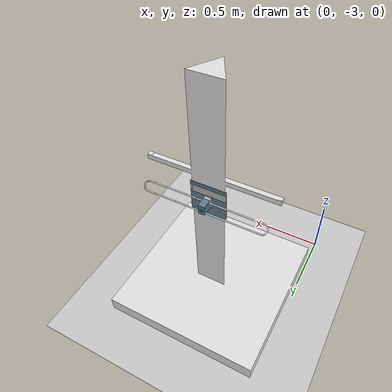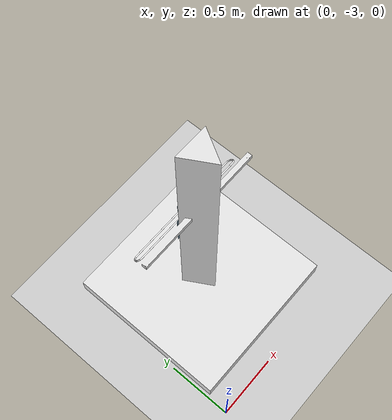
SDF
<sdf version="1.6">
 <world name="default">
  <light name="sun" type="directional">
   <pose>0 0 10 0 -0 0</pose>
   <diffuse>0.8 0.8 0.8 1</diffuse>
   <specular>0.1 0.1 0.1 1</specular>
   <attenuation>
    <range>1000</range>
    <constant>0.9</constant>
    <linear>0.01</linear>
    <quadratic>0.001</quadratic>
   </attenuation>
   <direction>-0.5 0.5 -1</direction>
  </light>
  <model name="ground_plane">
   <static>1</static>
   <link name="link">
    <collision name="collision">
     <geometry><plane><normal>0 0 1</normal><size>100 100</size></plane></geometry>
     <surface><friction><ode><mu>100</mu><mu2>50</mu2></ode></friction></surface>
    </collision>
    <visual name="visual">
     <cast_shadows>0</cast_shadows>
     <geometry><plane><normal>0 0 1</normal><size>100 100</size></plane></geometry>
     <material>
      <script><uri>file://media/materials/scripts/gazebo.material</uri><name>Gazebo/Grey</name></script>
     </material>
    </visual>
   </link>
  </model>
  <gravity>0 0 -9.8</gravity>
  <magnetic_field>6e-06 2.3e-05 -4.2e-05</magnetic_field>
  <atmosphere type="adiabatic"/>
  <physics name="default_physics" default="0" type="ode">
   <max_step_size>0.001</max_step_size>
   <real_time_factor>1</real_time_factor>
   <real_time_update_rate>1000</real_time_update_rate>
  </physics>
  <scene><ambient>0.4 0.4 0.4 1</ambient><background>0.7 0.7 0.7 1</background><shadows>1</shadows></scene>
  <spherical_coordinates>
   <surface_model>EARTH_WGS84</surface_model>
   <latitude_deg>0</latitude_deg>
   <longitude_deg>0</longitude_deg>
   <elevation>0</elevation>
   <heading_deg>0</heading_deg>
  </spherical_coordinates>
  <model name="mast_final">
   <link name="base_link">
    <inertial>
     <pose>1.57231 -1.01443 0.525884 0 -0 0</pose>
     <mass>2042.46</mass>
     <inertia><ixx>712.504</ixx><ixy>0</ixy><ixz>0</ixz><iyy>713.514</iyy><iyz>0</iyz><izz>436</izz></inertia>
    </inertial>
    <visual name="base_link_visual">
     <geometry>
      <mesh><scale>1 1 1</scale><uri>/home/panyam/catkin_ws/src/mast_final/meshes/base_link.STL</uri></mesh>
     </geometry>
     <material>
      <ambient>0.9 0.9 0.9 1</ambient>
      <diffuse>0.9 0.9 0.9 1</diffuse>
      <specular>0.9 0.9 0.9 1</specular>
      <emissive>0 0 0 1</emissive>
      <script><name>ModelPreview_1::base_link::base_link_visual_MATERIAL_</name><uri>__default__</uri></script>
      <shader type="vertex"><normal_map>__default__</normal_map></shader>
     </material>
    </visual>
    <visual name="base_link_fixed_joint_lump__text_board_visual_1">
     <pose>1.5723 -0.93868 1.2601 1.5708 -0 0</pose>
     <geometry>
      <mesh><scale>1 1 1</scale><uri>/home/panyam/catkin_ws/src/mast_final/meshes/text_board.STL</uri></mesh>
     </geometry>
     <material>
      <shader type="vertex"><normal_map>__default__</normal_map></shader>
      <ambient>0.375 0.5 0.582 1</ambient>
      <diffuse>0.375 0.5 0.582 1</diffuse>
      <specular>0.375 0.5 0.582 1</specular>
      <emissive>0 0 0 1</emissive>
      <script>
       <name>ModelPreview_1::base_link::base_link_fixed_joint_lump__text_board_visual_1_MATERIAL_</name>
       <uri>__default__</uri>
      </script>
     </material>
    </visual>
    <visual name="base_link_fixed_joint_lump__module_holder_visual_2">
     <pose>1.5723 -0.93868 1.2601 1.5708 7e-06 3.14159</pose>
     <geometry>
      <mesh><scale>1 1 1</scale><uri>/home/panyam/catkin_ws/src/mast_final/meshes/module_holder.STL</uri></mesh>
     </geometry>
     <material><shader type="vertex"><normal_map>__default__</normal_map></shader></material>
    </visual>
    <visual name="base_link_fixed_joint_lump__module_visual_3">
     <pose>1.5723 -0.87518 1.2601 -3.14159 -4e-06 -1.5708</pose>
     <geometry>
      <mesh><scale>1 1 1</scale><uri>/home/panyam/catkin_ws/src/mast_final/meshes/module.STL</uri></mesh>
     </geometry>
     <material>
      <shader type="vertex"><normal_map>__default__</normal_map></shader>
      <ambient>0.375 0.5 0.582 1</ambient>
      <diffuse>0.375 0.5 0.582 1</diffuse>
      <specular>0.375 0.5 0.582 1</specular>
      <emissive>0 0 0 1</emissive>
      <script>
       <name>ModelPreview_1::base_link::base_link_fixed_joint_lump__module_visual_3_MATERIAL_</name>
       <uri>__default__</uri>
      </script>
     </material>
    </visual>
    <visual name="base_link_fixed_joint_lump__antenna_visual_4">
     <pose>2.02542 -0.875142 1.25999 3.14158 -1.57079 -1.5708</pose>
     <geometry>
      <mesh><scale>1 1 1</scale><uri>/home/panyam/catkin_ws/src/mast_final/meshes/antenna.STL</uri></mesh>
     </geometry>
     <material>
      <shader type="vertex"><normal_map>__default__</normal_map></shader>
      <ambient>1 1 1 1</ambient>
      <diffuse>1 1 1 1</diffuse>
      <specular>1 1 1 1</specular>
      <emissive>0 0 0 1</emissive>
      <script>
       <name>ModelPreview_1::base_link::base_link_fixed_joint_lump__antenna_visual_4_MATERIAL_</name>
       <uri>__default__</uri>
      </script>
     </material>
    </visual>
    <visual name="base_link_fixed_joint_lump__text_excrude_visual_5">
     <pose>1.5723 -0.938681 1.42012 3.14159 7e-06 3.14159</pose>
     <geometry>
      <mesh><scale>1 1 1</scale><uri>/home/panyam/catkin_ws/src/mast_final/meshes/text_excrude.STL</uri></mesh>
     </geometry>
     <material><shader type="vertex"><normal_map>__default__</normal_map></shader></material>
    </visual>
    <collision name="base_link_collision">
     <geometry>
      <mesh><uri>/home/panyam/catkin_ws/src/mast_final/meshes/base_link.STL</uri><scale>1 1 1</scale></mesh>
     </geometry>
     <surface>
      <friction>
       <ode><mu>1</mu><mu2>1</mu2><fdir1>0 0 0</fdir1><slip1>0</slip1><slip2>0</slip2></ode>
       <torsional>
        <coefficient>1</coefficient>
        <patch_radius>0</patch_radius>
        <surface_radius>0</surface_radius>
        <use_patch_radius>1</use_patch_radius>
        <ode><slip>0</slip></ode>
       </torsional>
      </friction>
      <bounce><restitution_coefficient>0</restitution_coefficient><threshold>1e+06</threshold></bounce>
      <contact>
       <collide_without_contact>0</collide_without_contact>
       <collide_without_contact_bitmask>1</collide_without_contact_bitmask>
       <collide_bitmask>1</collide_bitmask>
       <ode>
        <soft_cfm>0</soft_cfm>
        <soft_erp>0.2</soft_erp>
        <kp>1e+13</kp>
        <kd>1</kd>
        <max_vel>0.01</max_vel>
        <min_depth>0</min_depth>
       </ode>
       <bullet>
        <split_impulse>1</split_impulse>
        <split_impulse_penetration_threshold>-0.01</split_impulse_penetration_threshold>
        <soft_cfm>0</soft_cfm>
        <soft_erp>0.2</soft_erp>
        <kp>1e+13</kp>
        <kd>1</kd>
       </bullet>
      </contact>
     </surface>
    </collision>
    <collision name="base_link_fixed_joint_lump__text_board_collision_1">
     <pose>1.5723 -0.93868 1.2601 1.5708 -0 0</pose>
     <geometry>
      <mesh><uri>/home/panyam/catkin_ws/src/mast_final/meshes/text_board.STL</uri><scale>1 1 1</scale></mesh>
     </geometry>
     <surface>
      <friction>
       <ode><mu>1</mu><mu2>1</mu2><fdir1>0 0 0</fdir1><slip1>0</slip1><slip2>0</slip2></ode>
       <torsional>
        <coefficient>1</coefficient>
        <patch_radius>0</patch_radius>
        <surface_radius>0</surface_radius>
        <use_patch_radius>1</use_patch_radius>
        <ode><slip>0</slip></ode>
       </torsional>
      </friction>
      <bounce><restitution_coefficient>0</restitution_coefficient><threshold>1e+06</threshold></bounce>
      <contact>
       <collide_without_contact>0</collide_without_contact>
       <collide_without_contact_bitmask>1</collide_without_contact_bitmask>
       <collide_bitmask>1</collide_bitmask>
       <ode>
        <soft_cfm>0</soft_cfm>
        <soft_erp>0.2</soft_erp>
        <kp>1e+13</kp>
        <kd>1</kd>
        <max_vel>0.01</max_vel>
        <min_depth>0</min_depth>
       </ode>
       <bullet>
        <split_impulse>1</split_impulse>
        <split_impulse_penetration_threshold>-0.01</split_impulse_penetration_threshold>
        <soft_cfm>0</soft_cfm>
        <soft_erp>0.2</soft_erp>
        <kp>1e+13</kp>
        <kd>1</kd>
       </bullet>
      </contact>
     </surface>
    </collision>
    <collision name="base_link_fixed_joint_lump__module_collision_3">
     <pose>1.5723 -0.87518 1.2601 -3.14159 -4e-06 -1.5708</pose>
     <geometry>
      <mesh><uri>/home/panyam/catkin_ws/src/mast_final/meshes/module.STL</uri><scale>1 1 1</scale></mesh>
     </geometry>
     <surface>
      <friction>
       <ode><mu>1</mu><mu2>1</mu2><fdir1>0 0 0</fdir1><slip1>0</slip1><slip2>0</slip2></ode>
       <torsional>
        <coefficient>1</coefficient>
        <patch_radius>0</patch_radius>
        <surface_radius>0</surface_radius>
        <use_patch_radius>1</use_patch_radius>
        <ode><slip>0</slip></ode>
       </torsional>
      </friction>
      <bounce><restitution_coefficient>0</restitution_coefficient><threshold>1e+06</threshold></bounce>
      <contact>
       <collide_without_contact>0</collide_without_contact>
       <collide_without_contact_bitmask>1</collide_without_contact_bitmask>
       <collide_bitmask>1</collide_bitmask>
       <ode>
        <soft_cfm>0</soft_cfm>
        <soft_erp>0.2</soft_erp>
        <kp>1e+13</kp>
        <kd>1</kd>
        <max_vel>0.01</max_vel>
        <min_depth>0</min_depth>
       </ode>
       <bullet>
        <split_impulse>1</split_impulse>
        <split_impulse_penetration_threshold>-0.01</split_impulse_penetration_threshold>
        <soft_cfm>0</soft_cfm>
        <soft_erp>0.2</soft_erp>
        <kp>1e+13</kp>
        <kd>1</kd>
       </bullet>
      </contact>
     </surface>
    </collision>
    <collision name="base_link_fixed_joint_lump__module_holder_collision_2">
     <pose>1.5723 -0.93868 1.2601 1.5708 7e-06 3.14159</pose>
     <geometry>
      <mesh><uri>/home/panyam/catkin_ws/src/mast_final/meshes/module_holder.STL</uri><scale>1 1 1</scale></mesh>
     </geometry>
     <surface>
      <friction>
       <ode><mu>1</mu><mu2>1</mu2><fdir1>0 0 0</fdir1><slip1>0</slip1><slip2>0</slip2></ode>
       <torsional>
        <coefficient>1</coefficient>
        <patch_radius>0</patch_radius>
        <surface_radius>0</surface_radius>
        <use_patch_radius>1</use_patch_radius>
        <ode><slip>0</slip></ode>
       </torsional>
      </friction>
      <bounce><restitution_coefficient>0</restitution_coefficient><threshold>1e+06</threshold></bounce>
      <contact>
       <collide_without_contact>0</collide_without_contact>
       <collide_without_contact_bitmask>1</collide_without_contact_bitmask>
       <collide_bitmask>1</collide_bitmask>
       <ode>
        <soft_cfm>0</soft_cfm>
        <soft_erp>0.2</soft_erp>
        <kp>1e+13</kp>
        <kd>1</kd>
        <max_vel>0.01</max_vel>
        <min_depth>0</min_depth>
       </ode>
       <bullet>
        <split_impulse>1</split_impulse>
        <split_impulse_penetration_threshold>-0.01</split_impulse_penetration_threshold>
        <soft_cfm>0</soft_cfm>
        <soft_erp>0.2</soft_erp>
        <kp>1e+13</kp>
        <kd>1</kd>
       </bullet>
      </contact>
     </surface>
    </collision>
    <collision name="base_link_fixed_joint_lump__antenna_collision_4">
     <pose>2.02542 -0.875142 1.25999 3.14159 -1.57079 -1.57081</pose>
     <geometry>
      <mesh><uri>/home/panyam/catkin_ws/src/mast_final/meshes/antenna.STL</uri><scale>1 1 1</scale></mesh>
     </geometry>
     <surface>
      <friction>
       <ode><mu>1</mu><mu2>1</mu2><fdir1>0 0 0</fdir1><slip1>0</slip1><slip2>0</slip2></ode>
       <torsional>
        <coefficient>1</coefficient>
        <patch_radius>0</patch_radius>
        <surface_radius>0</surface_radius>
        <use_patch_radius>1</use_patch_radius>
        <ode><slip>0</slip></ode>
       </torsional>
      </friction>
      <bounce><restitution_coefficient>0</restitution_coefficient><threshold>1e+06</threshold></bounce>
      <contact>
       <collide_without_contact>0</collide_without_contact>
       <collide_without_contact_bitmask>1</collide_without_contact_bitmask>
       <collide_bitmask>1</collide_bitmask>
       <ode>
        <soft_cfm>0</soft_cfm>
        <soft_erp>0.2</soft_erp>
        <kp>1e+13</kp>
        <kd>1</kd>
        <max_vel>0.01</max_vel>
        <min_depth>0</min_depth>
       </ode>
       <bullet>
        <split_impulse>1</split_impulse>
        <split_impulse_penetration_threshold>-0.01</split_impulse_penetration_threshold>
        <soft_cfm>0</soft_cfm>
        <soft_erp>0.2</soft_erp>
        <kp>1e+13</kp>
        <kd>1</kd>
       </bullet>
      </contact>
     </surface>
    </collision>
    <collision name="base_link_fixed_joint_lump__text_excrude_collision_5">
     <pose>1.5723 -0.938681 1.42012 3.14159 7e-06 3.14159</pose>
     <geometry>
      <mesh><uri>/home/panyam/catkin_ws/src/mast_final/meshes/text_excrude.STL</uri><scale>1 1 1</scale></mesh>
     </geometry>
     <surface>
      <friction>
       <ode><mu>1</mu><mu2>1</mu2><fdir1>0 0 0</fdir1><slip1>0</slip1><slip2>0</slip2></ode>
       <torsional>
        <coefficient>1</coefficient>
        <patch_radius>0</patch_radius>
        <surface_radius>0</surface_radius>
        <use_patch_radius>1</use_patch_radius>
        <ode><slip>0</slip></ode>
       </torsional>
      </friction>
      <bounce><restitution_coefficient>0</restitution_coefficient><threshold>1e+06</threshold></bounce>
      <contact>
       <collide_without_contact>0</collide_without_contact>
       <collide_without_contact_bitmask>1</collide_without_contact_bitmask>
       <collide_bitmask>1</collide_bitmask>
       <ode>
        <soft_cfm>0</soft_cfm>
        <soft_erp>0.2</soft_erp>
        <kp>1e+13</kp>
        <kd>1</kd>
        <max_vel>0.01</max_vel>
        <min_depth>0</min_depth>
       </ode>
       <bullet>
        <split_impulse>1</split_impulse>
        <split_impulse_penetration_threshold>-0.01</split_impulse_penetration_threshold>
        <soft_cfm>0</soft_cfm>
        <soft_erp>0.2</soft_erp>
        <kp>1e+13</kp>
        <kd>1</kd>
       </bullet>
      </contact>
     </surface>
    </collision>
   </link>
   <static>0</static>
   <pose>-0.910698 -1.17832 -0.24408 -5e-06 5e-06 -0</pose>
  </model>
  <model name="BYU Ground_2">
   <static>1</static>
   <link name="link">
    <pose>0 0 0.05 0 0 -1.57</pose>
    <visual name="visual">
     <geometry><box><size>0.26 0.001 0.062</size></box></geometry>
     <material>
      <script><uri>model://byu/materials/scripts/byu.material</uri><name>BYU/ground</name></script>
     </material>
    </visual>
   </link>
   <pose>0.654674 -2.11494 1.12054 0 -0 1.56581</pose>
  </model>
 </world>
</sdf>
